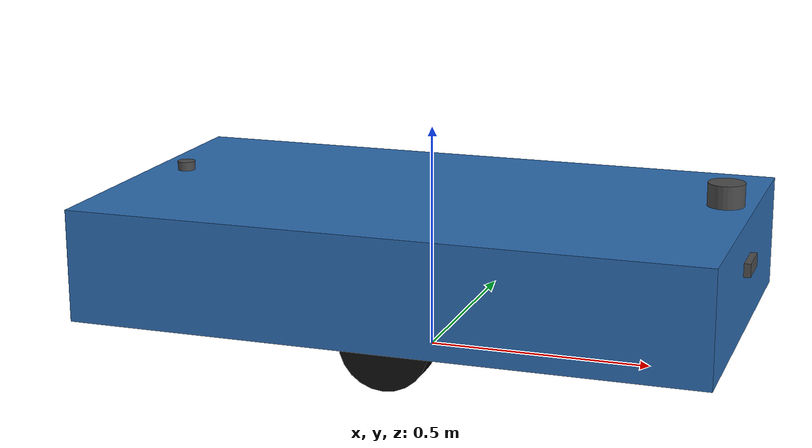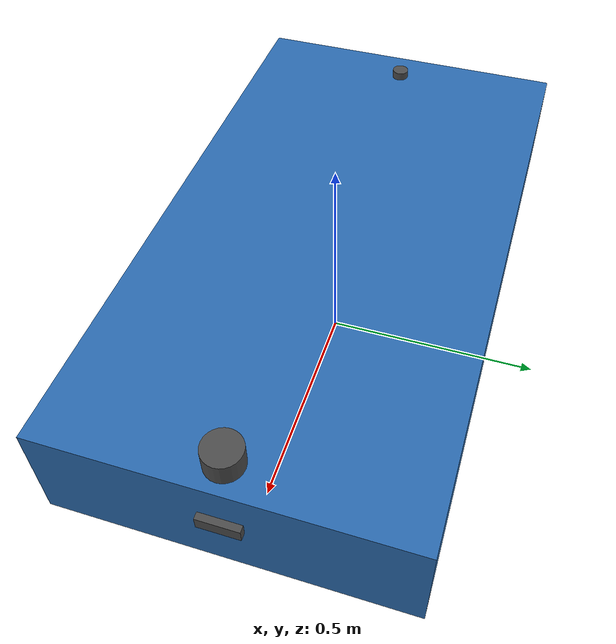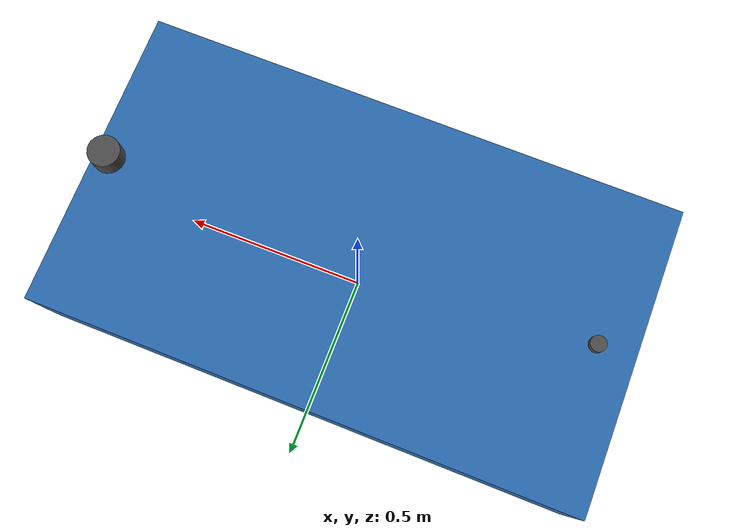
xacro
<?xml version="1.0"?>
<robot name="parking_bot" xmlns:xacro="http://www.ros.org/wiki/xacro">

  <xacro:property name="chassis_length" value="1.40" />
  <xacro:property name="chassis_width" value="0.775" />
  <xacro:property name="chassis_height" value="0.25" />
  <xacro:property name="chassis_mass" value="35.0" />

  <xacro:property name="wheel_radius" value="0.10" />
  <xacro:property name="wheel_width" value="0.06" />
  <xacro:property name="wheel_mass" value="1.2" />
  <xacro:property name="wheel_separation" value="0.60" />  <!-- 좌/우 구동 바퀴 간격 -->

  <xacro:property name="caster_radius" value="0.10" />     <!-- 앞/뒤 캐스터 볼 -->
  <xacro:property name="caster_offset_x" value="0.55" />   <!-- 차체 중심에서 앞/뒤 캐스터까지 -->
  <xacro:property name="caster_mass" value="0.3" />

  <xacro:property name="base_height" value="${wheel_radius}" />

  <material name="body_blue"><color rgba="0.17 0.42 0.69 1.0"/></material>
  <material name="tire_black"><color rgba="0.05 0.05 0.05 1.0"/></material>
  <material name="caster_grey"><color rgba="0.2 0.2 0.2 1.0"/></material>
  <material name="sensor_grey"><color rgba="0.3 0.3 0.3 1.0"/></material>

  <!-- ============================== base_link (섀시) ============================== -->
  <link name="base_footprint"/>

  <joint name="base_footprint_joint" type="fixed">
    <parent link="base_footprint"/>
    <child link="base_link"/>
    <origin xyz="0 0 ${base_height}" rpy="0 0 0"/>
  </joint>

  <link name="base_link">
    <visual>
      <origin xyz="0 0 ${chassis_height/2}" rpy="0 0 0"/>
      <geometry>
        <box size="${chassis_length} ${chassis_width} ${chassis_height}"/>
      </geometry>
      <material name="body_blue"/>
    </visual>
    <collision>
      <origin xyz="0 0 ${chassis_height/2}" rpy="0 0 0"/>
      <geometry>
        <box size="${chassis_length} ${chassis_width} ${chassis_height}"/>
      </geometry>
    </collision>
    <inertial>
      <mass value="${chassis_mass}"/>
      <origin xyz="0 0 ${chassis_height/2}" rpy="0 0 0"/>
      <inertia ixx="1.8" ixy="0" ixz="0" iyy="3.0" iyz="0" izz="3.5"/>
    </inertial>
  </link>

  <!-- ============================== 구동 바퀴 (좌/우, 차동구동) ============================== -->
  <xacro:macro name="wheel_link" params="name">
    <link name="${name}">
      <visual>
        <origin xyz="0 0 0" rpy="${pi/2} 0 0"/>
        <geometry>
          <cylinder radius="${wheel_radius}" length="${wheel_width}"/>
        </geometry>
        <material name="tire_black"/>
      </visual>
      <collision>
        <origin xyz="0 0 0" rpy="${pi/2} 0 0"/>
        <geometry>
          <cylinder radius="${wheel_radius}" length="${wheel_width}"/>
        </geometry>
      </collision>
      <inertial>
        <mass value="${wheel_mass}"/>
        <inertia ixx="0.006" ixy="0" ixz="0" iyy="0.006" iyz="0" izz="0.01"/>
      </inertial>
    </link>
  </xacro:macro>

  <xacro:wheel_link name="left_wheel"/>
  <joint name="left_wheel_joint" type="continuous">
    <parent link="base_link"/>
    <child link="left_wheel"/>
    <origin xyz="0 ${wheel_separation/2} 0" rpy="0 0 0"/>
    <axis xyz="0 1 0"/>
  </joint>

  <xacro:wheel_link name="right_wheel"/>
  <joint name="right_wheel_joint" type="continuous">
    <parent link="base_link"/>
    <child link="right_wheel"/>
    <origin xyz="0 ${-wheel_separation/2} 0" rpy="0 0 0"/>
    <axis xyz="0 1 0"/>
  </joint>

  <!-- ============================== 캐스터 (앞/뒤, 자유 회전 볼) ============================== -->
  <!-- 조향 DOF 없이 마찰 낮은 구(sphere)로 단순화한 캐스터. TurtleBot 계열 등에서
       흔히 쓰는 방식으로, base_link에 fixed로 고정하고 마찰만 낮게 준다. -->
  <xacro:macro name="caster_link" params="name x">
    <link name="${name}">
      <visual>
        <geometry><sphere radius="${caster_radius}"/></geometry>
        <material name="caster_grey"/>
      </visual>
      <collision>
        <geometry><sphere radius="${caster_radius}"/></geometry>
        <surface>
          <friction><ode><mu>0.01</mu><mu2>0.01</mu2></ode></friction>
        </surface>
      </collision>
      <inertial>
        <mass value="${caster_mass}"/>
        <inertia ixx="0.0005" ixy="0" ixz="0" iyy="0.0005" iyz="0" izz="0.0005"/>
      </inertial>
    </link>
    <joint name="${name}_joint" type="fixed">
      <parent link="base_link"/>
      <child link="${name}"/>
      <origin xyz="${x} 0 0" rpy="0 0 0"/>
    </joint>
  </xacro:macro>

  <xacro:caster_link name="caster_front" x="${caster_offset_x}"/>
  <xacro:caster_link name="caster_rear" x="${-caster_offset_x}"/>

  <!-- ============================== 센서 (규격표: LiDAR 1, Camera 1, GPS 1 + IMU) ============================== -->
  <xacro:property name="lidar_offset_x" value="0.65" />
  <link name="lidar_link">
    <visual>
      <geometry><cylinder radius="0.04" length="0.05"/></geometry>
      <material name="sensor_grey"/>
    </visual>
    <collision>
      <geometry><cylinder radius="0.04" length="0.05"/></geometry>
    </collision>
    <inertial>
      <mass value="0.15"/>
      <inertia ixx="0.0001" ixy="0" ixz="0" iyy="0.0001" iyz="0" izz="0.0001"/>
    </inertial>
  </link>
  <joint name="lidar_joint" type="fixed">
    <parent link="base_link"/>
    <child link="lidar_link"/>
    <origin xyz="${lidar_offset_x} 0 ${chassis_height + 0.05}" rpy="0 0 0"/>
  </joint>

  <!-- 카메라 : 전방 범퍼 상단 -->
  <link name="camera_link">
    <visual>
      <geometry><box size="0.03 0.09 0.03"/></geometry>
      <material name="sensor_grey"/>
    </visual>
    <collision>
      <geometry><box size="0.03 0.09 0.03"/></geometry>
    </collision>
    <inertial>
      <mass value="0.1"/>
      <inertia ixx="0.00005" ixy="0" ixz="0" iyy="0.00005" iyz="0" izz="0.00005"/>
    </inertial>
  </link>
  <joint name="camera_joint" type="fixed">
    <parent link="base_link"/>
    <child link="camera_link"/>
    <origin xyz="${chassis_length/2} 0 ${chassis_height*0.6}" rpy="0 0 0"/>
  </joint>
  <link name="camera_optical_link"/>
  <joint name="camera_optical_joint" type="fixed">
    <parent link="camera_link"/>
    <child link="camera_optical_link"/>
    <origin xyz="0 0 0" rpy="${-pi/2} 0 ${-pi/2}"/>
  </joint>

  <!-- GPS(NavSat) : 차체 상단 후방 -->
  <link name="gps_link">
    <visual>
      <geometry><cylinder radius="0.02" length="0.02"/></geometry>
      <material name="sensor_grey"/>
    </visual>
    <inertial>
      <mass value="0.05"/>
      <inertia ixx="0.00002" ixy="0" ixz="0" iyy="0.00002" iyz="0" izz="0.00002"/>
    </inertial>
  </link>
  <joint name="gps_joint" type="fixed">
    <parent link="base_link"/>
    <child link="gps_link"/>
    <origin xyz="${-chassis_length/2 + 0.1} 0 ${chassis_height + 0.02}" rpy="0 0 0"/>
  </joint>

  <!-- IMU : 규격표의 "기타 센서(수량 제한 없음)" 항목, 차체 중심 -->
  <link name="imu_link">
    <inertial>
      <mass value="0.02"/>
      <inertia ixx="0.00001" ixy="0" ixz="0" iyy="0.00001" iyz="0" izz="0.00001"/>
    </inertial>
  </link>
  <joint name="imu_joint" type="fixed">
    <parent link="base_link"/>
    <child link="imu_link"/>
    <origin xyz="0 0 ${chassis_height/2}" rpy="0 0 0"/>
  </joint>

  <gazebo>
    <plugin filename="ignition-gazebo-diff-drive-system"
            name="ignition::gazebo::systems::DiffDrive">
      <left_joint>left_wheel_joint</left_joint>
      <right_joint>right_wheel_joint</right_joint>
      <wheel_separation>${wheel_separation}</wheel_separation>
      <wheel_radius>${wheel_radius}</wheel_radius>
      <topic>cmd_vel</topic>
      <odom_topic>/odom</odom_topic>
      <frame_id>odom</frame_id>
      <child_frame_id>base_footprint</child_frame_id>
      <tf_topic>/tf</tf_topic>
      <odom_publish_frequency>30</odom_publish_frequency>
      <max_linear_acceleration>2.0</max_linear_acceleration>
      <min_linear_acceleration>-2.0</min_linear_acceleration>
      <max_angular_acceleration>6.0</max_angular_acceleration>
      <min_angular_acceleration>-6.0</min_angular_acceleration>
      <max_linear_velocity>0.6</max_linear_velocity>
      <min_linear_velocity>-0.6</min_linear_velocity>
      <max_angular_velocity>2.5</max_angular_velocity>
      <min_angular_velocity>-2.5</min_angular_velocity>
    </plugin>

    <plugin filename="ignition-gazebo-joint-state-publisher-system"
            name="ignition::gazebo::systems::JointStatePublisher"/>
  </gazebo>

  <!-- LiDAR 센서 : 전방+좌우 250도(-125~+125도, 실제 규격 기준). 정후방 110도만
       스캔 범위 밖 - 차체 앞쪽에 달린 센서가 자기 차체 바로 뒤는 볼 수 없다는
       물리적 제약을 min/max_angle로 표현하되, 좌우 대각선-후방까지는 보여서
       후진 중에도 옆 차와의 거리를 계속 잴 수 있다. -->
  <gazebo reference="lidar_link">
    <sensor name="lidar" type="gpu_lidar">
      <topic>/scan</topic>
      <update_rate>10</update_rate>
      <always_on>true</always_on>
      <visualize>true</visualize>
      <lidar>
        <scan>
          <horizontal>
            <samples>251</samples>
            <resolution>1</resolution>
            <min_angle>-2.18166156</min_angle>
            <max_angle>2.18166156</max_angle>
          </horizontal>
        </scan>
        <range>
          <min>0.08</min>
          <max>12.0</max>
          <resolution>0.01</resolution>
        </range>
      </lidar>
    </sensor>
  </gazebo>

  <!-- 카메라 센서 -->
  <gazebo reference="camera_optical_link">
    <sensor name="camera" type="camera">
      <topic>/camera/image_raw</topic>
      <update_rate>15</update_rate>
      <always_on>true</always_on>
      <camera>
        <horizontal_fov>1.396</horizontal_fov>
        <image><width>640</width><height>480</height></image>
        <clip><near>0.05</near><far>50</far></clip>
      </camera>
    </sensor>
  </gazebo>

  <!-- GPS(NavSat) 센서 -->
  <gazebo reference="gps_link">
    <sensor name="navsat" type="navsat">
      <topic>/gps/fix</topic>
      <update_rate>5</update_rate>
      <always_on>true</always_on>
    </sensor>
  </gazebo>

  <!-- IMU 센서 -->
  <gazebo reference="imu_link">
    <sensor name="imu" type="imu">
      <topic>/imu</topic>
      <update_rate>50</update_rate>
      <always_on>true</always_on>
    </sensor>
  </gazebo>

</robot>
